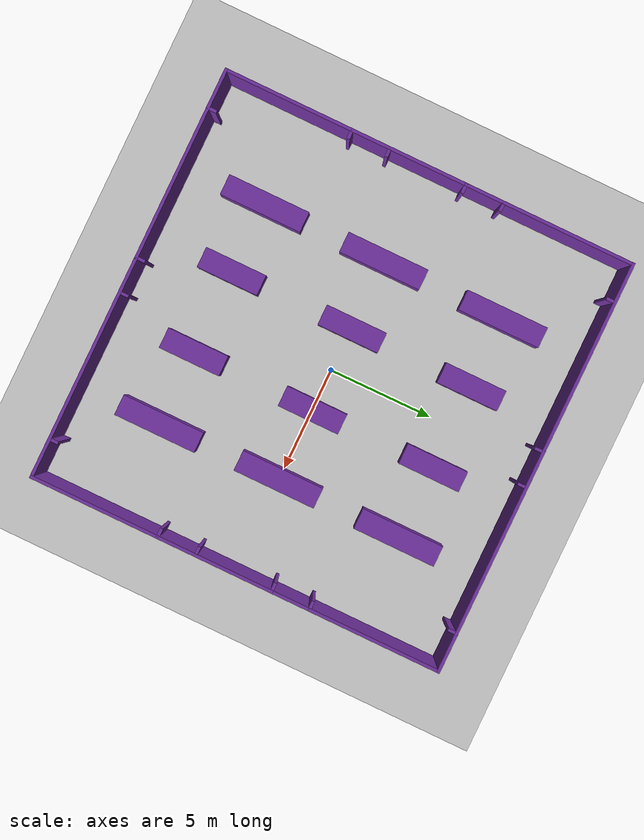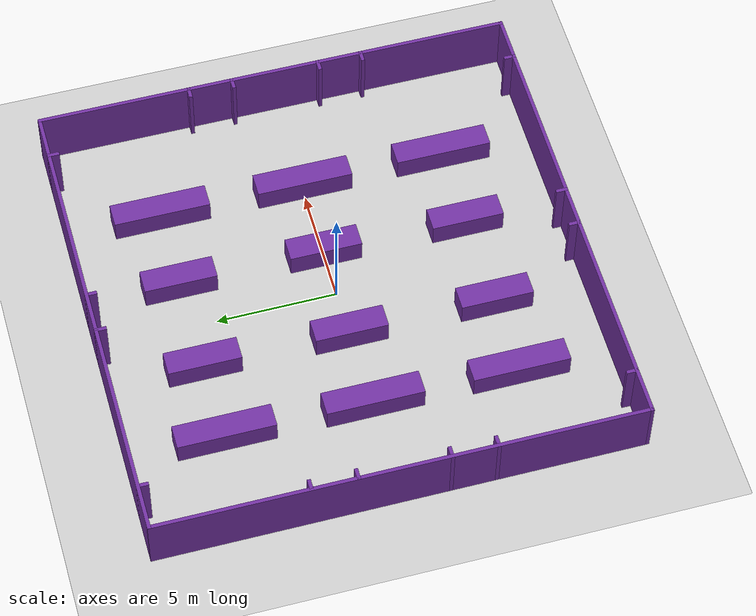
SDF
<sdf version="1.7">
 <world name="default">
  <light name="sun" type="directional">
   <pose>0 0 10 0 -0 0</pose>
   <diffuse>0.8 0.8 0.8 1</diffuse>
   <specular>0.2 0.2 0.2 1</specular>
   <attenuation>
    <range>1000</range>
    <constant>0.9</constant>
    <linear>0.01</linear>
    <quadratic>0.001</quadratic>
   </attenuation>
   <direction>-0.5 0.1 -0.9</direction>
   <spot><inner_angle>0</inner_angle><outer_angle>0</outer_angle><falloff>0</falloff></spot>
  </light>
  <model name="ground_plane">
   <static>1</static>
   <link name="link">
    <collision name="collision">
     <geometry><plane><normal>0 0 1</normal><size>100 100</size></plane></geometry>
     <surface>
      <contact><collide_bitmask>65535</collide_bitmask></contact>
      <friction><ode><mu>100</mu><mu2>50</mu2></ode></friction>
     </surface>
    </collision>
    <visual name="visual">
     <cast_shadows>0</cast_shadows>
     <geometry><plane><normal>0 0 1</normal><size>100 100</size></plane></geometry>
     <material>
      <script><uri>file://media/materials/scripts/gazebo.material</uri><name>Gazebo/Grey</name></script>
     </material>
    </visual>
   </link>
  </model>
  <gravity>0 0 -9.8</gravity>
  <magnetic_field>6e-06 2.3e-05 -4.2e-05</magnetic_field>
  <atmosphere type="adiabatic"/>
  <physics type="ode">
   <max_step_size>0.001</max_step_size>
   <real_time_factor>1</real_time_factor>
   <real_time_update_rate>1000</real_time_update_rate>
  </physics>
  <scene><ambient>0.4 0.4 0.4 1</ambient><background>0.7 0.7 0.7 1</background><shadows>1</shadows></scene>
  <spherical_coordinates>
   <surface_model>EARTH_WGS84</surface_model>
   <latitude_deg>0</latitude_deg>
   <longitude_deg>0</longitude_deg>
   <elevation>0</elevation>
   <heading_deg>0</heading_deg>
  </spherical_coordinates>
  <model name="B_1_4_0">
   <link name="link_0">
    <inertial>
     <mass>40</mass>
     <inertia><ixx>56.6667</ixx><ixy>0</ixy><ixz>0</ixz><iyy>6.66667</iyy><iyz>0</iyz><izz>56.6667</izz></inertia>
    </inertial>
    <visual name="visual">
     <geometry><box><size>1 4 1</size></box></geometry>
     <material>
      <lighting>1</lighting>
      <script><uri>file://media/materials/scripts/gazebo.material</uri><name>Gazebo/Grey</name></script>
      <shader type="pixel"><normal_map>__default__</normal_map></shader>
      <ambient>0.44 0.19 0.63 1</ambient>
      <diffuse>0.7 0.7 0.7 1</diffuse>
      <specular>0.01 0.01 0.01 1</specular>
      <emissive>0 0 0 1</emissive>
     </material>
    </visual>
    <collision name="collision">
     <geometry><box><size>1 4 1</size></box></geometry>
     <surface>
      <friction>
       <ode><mu>1</mu><mu2>1</mu2><fdir1>0 0 0</fdir1><slip1>0</slip1><slip2>0</slip2></ode>
       <torsional>
        <coefficient>1</coefficient>
        <patch_radius>0</patch_radius>
        <surface_radius>0</surface_radius>
        <use_patch_radius>1</use_patch_radius>
        <ode><slip>0</slip></ode>
       </torsional>
      </friction>
      <bounce><restitution_coefficient>0</restitution_coefficient><threshold>1e+06</threshold></bounce>
      <contact>
       <collide_without_contact>0</collide_without_contact>
       <collide_without_contact_bitmask>1</collide_without_contact_bitmask>
       <collide_bitmask>1</collide_bitmask>
       <ode>
        <soft_cfm>0</soft_cfm>
        <soft_erp>0.2</soft_erp>
        <kp>1e+13</kp>
        <kd>1</kd>
        <max_vel>0.01</max_vel>
        <min_depth>0</min_depth>
       </ode>
       <bullet>
        <split_impulse>1</split_impulse>
        <split_impulse_penetration_threshold>-0.01</split_impulse_penetration_threshold>
        <soft_cfm>0</soft_cfm>
        <soft_erp>0.2</soft_erp>
        <kp>1e+13</kp>
        <kd>1</kd>
       </bullet>
      </contact>
     </surface>
    </collision>
   </link>
   <static>0</static>
   <pose>-5.4852 0.015964 0.5 0 -0 0</pose>
  </model>
  <model name="B_1_4">
   <link name="link_0">
    <inertial>
     <mass>40</mass>
     <inertia><ixx>56.6667</ixx><ixy>0</ixy><ixz>0</ixz><iyy>6.66667</iyy><iyz>0</iyz><izz>56.6667</izz></inertia>
    </inertial>
    <visual name="visual">
     <geometry><box><size>1 4 1</size></box></geometry>
     <material>
      <lighting>1</lighting>
      <script><uri>file://media/materials/scripts/gazebo.material</uri><name>Gazebo/Grey</name></script>
      <shader type="pixel"><normal_map>__default__</normal_map></shader>
      <ambient>0.44 0.19 0.63 1</ambient>
      <diffuse>0.7 0.7 0.7 1</diffuse>
      <specular>0.01 0.01 0.01 1</specular>
      <emissive>0 0 0 1</emissive>
     </material>
    </visual>
    <collision name="collision">
     <geometry><box><size>1 4 1</size></box></geometry>
     <surface>
      <friction>
       <ode><mu>1</mu><mu2>1</mu2><fdir1>0 0 0</fdir1><slip1>0</slip1><slip2>0</slip2></ode>
       <torsional>
        <coefficient>1</coefficient>
        <patch_radius>0</patch_radius>
        <surface_radius>0</surface_radius>
        <use_patch_radius>1</use_patch_radius>
        <ode><slip>0</slip></ode>
       </torsional>
      </friction>
      <bounce><restitution_coefficient>0</restitution_coefficient><threshold>1e+06</threshold></bounce>
      <contact>
       <collide_without_contact>0</collide_without_contact>
       <collide_without_contact_bitmask>1</collide_without_contact_bitmask>
       <collide_bitmask>1</collide_bitmask>
       <ode>
        <soft_cfm>0</soft_cfm>
        <soft_erp>0.2</soft_erp>
        <kp>1e+13</kp>
        <kd>1</kd>
        <max_vel>0.01</max_vel>
        <min_depth>0</min_depth>
       </ode>
       <bullet>
        <split_impulse>1</split_impulse>
        <split_impulse_penetration_threshold>-0.01</split_impulse_penetration_threshold>
        <soft_cfm>0</soft_cfm>
        <soft_erp>0.2</soft_erp>
        <kp>1e+13</kp>
        <kd>1</kd>
       </bullet>
      </contact>
     </surface>
    </collision>
   </link>
   <static>0</static>
   <pose>-5.44605 6.01143 0.5 0 -0 0</pose>
  </model>
  <model name="B_1_4_1">
   <link name="link_0">
    <inertial>
     <mass>40</mass>
     <inertia><ixx>56.6667</ixx><ixy>0</ixy><ixz>0</ixz><iyy>6.66667</iyy><iyz>0</iyz><izz>56.6667</izz></inertia>
    </inertial>
    <visual name="visual">
     <geometry><box><size>1 4 1</size></box></geometry>
     <material>
      <lighting>1</lighting>
      <script><uri>file://media/materials/scripts/gazebo.material</uri><name>Gazebo/Grey</name></script>
      <shader type="pixel"><normal_map>__default__</normal_map></shader>
      <ambient>0.44 0.19 0.63 1</ambient>
      <diffuse>0.7 0.7 0.7 1</diffuse>
      <specular>0.01 0.01 0.01 1</specular>
      <emissive>0 0 0 1</emissive>
     </material>
    </visual>
    <collision name="collision">
     <geometry><box><size>1 4 1</size></box></geometry>
     <surface>
      <friction>
       <ode><mu>1</mu><mu2>1</mu2><fdir1>0 0 0</fdir1><slip1>0</slip1><slip2>0</slip2></ode>
       <torsional>
        <coefficient>1</coefficient>
        <patch_radius>0</patch_radius>
        <surface_radius>0</surface_radius>
        <use_patch_radius>1</use_patch_radius>
        <ode><slip>0</slip></ode>
       </torsional>
      </friction>
      <bounce><restitution_coefficient>0</restitution_coefficient><threshold>1e+06</threshold></bounce>
      <contact>
       <collide_without_contact>0</collide_without_contact>
       <collide_without_contact_bitmask>1</collide_without_contact_bitmask>
       <collide_bitmask>1</collide_bitmask>
       <ode>
        <soft_cfm>0</soft_cfm>
        <soft_erp>0.2</soft_erp>
        <kp>1e+13</kp>
        <kd>1</kd>
        <max_vel>0.01</max_vel>
        <min_depth>0</min_depth>
       </ode>
       <bullet>
        <split_impulse>1</split_impulse>
        <split_impulse_penetration_threshold>-0.01</split_impulse_penetration_threshold>
        <soft_cfm>0</soft_cfm>
        <soft_erp>0.2</soft_erp>
        <kp>1e+13</kp>
        <kd>1</kd>
       </bullet>
      </contact>
     </surface>
    </collision>
   </link>
   <static>0</static>
   <pose>-5.50992 -5.97184 0.5 0 -0 0</pose>
  </model>
  <model name="B_1_4_2">
   <link name="link_0">
    <inertial>
     <mass>40</mass>
     <inertia><ixx>56.6667</ixx><ixy>0</ixy><ixz>0</ixz><iyy>6.66667</iyy><iyz>0</iyz><izz>56.6667</izz></inertia>
    </inertial>
    <visual name="visual">
     <geometry><box><size>1 4 1</size></box></geometry>
     <material>
      <lighting>1</lighting>
      <script><uri>file://media/materials/scripts/gazebo.material</uri><name>Gazebo/Grey</name></script>
      <shader type="pixel"><normal_map>__default__</normal_map></shader>
      <ambient>0.44 0.19 0.63 1</ambient>
      <diffuse>0.7 0.7 0.7 1</diffuse>
      <specular>0.01 0.01 0.01 1</specular>
      <emissive>0 0 0 1</emissive>
     </material>
    </visual>
    <collision name="collision">
     <geometry><box><size>1 4 1</size></box></geometry>
     <surface>
      <friction>
       <ode><mu>1</mu><mu2>1</mu2><fdir1>0 0 0</fdir1><slip1>0</slip1><slip2>0</slip2></ode>
       <torsional>
        <coefficient>1</coefficient>
        <patch_radius>0</patch_radius>
        <surface_radius>0</surface_radius>
        <use_patch_radius>1</use_patch_radius>
        <ode><slip>0</slip></ode>
       </torsional>
      </friction>
      <bounce><restitution_coefficient>0</restitution_coefficient><threshold>1e+06</threshold></bounce>
      <contact>
       <collide_without_contact>0</collide_without_contact>
       <collide_without_contact_bitmask>1</collide_without_contact_bitmask>
       <collide_bitmask>1</collide_bitmask>
       <ode>
        <soft_cfm>0</soft_cfm>
        <soft_erp>0.2</soft_erp>
        <kp>1e+13</kp>
        <kd>1</kd>
        <max_vel>0.01</max_vel>
        <min_depth>0</min_depth>
       </ode>
       <bullet>
        <split_impulse>1</split_impulse>
        <split_impulse_penetration_threshold>-0.01</split_impulse_penetration_threshold>
        <soft_cfm>0</soft_cfm>
        <soft_erp>0.2</soft_erp>
        <kp>1e+13</kp>
        <kd>1</kd>
       </bullet>
      </contact>
     </surface>
    </collision>
   </link>
   <static>0</static>
   <pose>5.52612 6.00951 0.5 0 -0 0</pose>
  </model>
  <model name="B_1_4_3">
   <link name="link_0">
    <inertial>
     <mass>40</mass>
     <inertia><ixx>56.6667</ixx><ixy>0</ixy><ixz>0</ixz><iyy>6.66667</iyy><iyz>0</iyz><izz>56.6667</izz></inertia>
    </inertial>
    <visual name="visual">
     <geometry><box><size>1 4 1</size></box></geometry>
     <material>
      <lighting>1</lighting>
      <script><uri>file://media/materials/scripts/gazebo.material</uri><name>Gazebo/Grey</name></script>
      <shader type="pixel"><normal_map>__default__</normal_map></shader>
      <ambient>0.44 0.19 0.63 1</ambient>
      <diffuse>0.7 0.7 0.7 1</diffuse>
      <specular>0.01 0.01 0.01 1</specular>
      <emissive>0 0 0 1</emissive>
     </material>
    </visual>
    <collision name="collision">
     <geometry><box><size>1 4 1</size></box></geometry>
     <surface>
      <friction>
       <ode><mu>1</mu><mu2>1</mu2><fdir1>0 0 0</fdir1><slip1>0</slip1><slip2>0</slip2></ode>
       <torsional>
        <coefficient>1</coefficient>
        <patch_radius>0</patch_radius>
        <surface_radius>0</surface_radius>
        <use_patch_radius>1</use_patch_radius>
        <ode><slip>0</slip></ode>
       </torsional>
      </friction>
      <bounce><restitution_coefficient>0</restitution_coefficient><threshold>1e+06</threshold></bounce>
      <contact>
       <collide_without_contact>0</collide_without_contact>
       <collide_without_contact_bitmask>1</collide_without_contact_bitmask>
       <collide_bitmask>1</collide_bitmask>
       <ode>
        <soft_cfm>0</soft_cfm>
        <soft_erp>0.2</soft_erp>
        <kp>1e+13</kp>
        <kd>1</kd>
        <max_vel>0.01</max_vel>
        <min_depth>0</min_depth>
       </ode>
       <bullet>
        <split_impulse>1</split_impulse>
        <split_impulse_penetration_threshold>-0.01</split_impulse_penetration_threshold>
        <soft_cfm>0</soft_cfm>
        <soft_erp>0.2</soft_erp>
        <kp>1e+13</kp>
        <kd>1</kd>
       </bullet>
      </contact>
     </surface>
    </collision>
   </link>
   <static>0</static>
   <pose>5.49347 -0.022705 0.5 0 -0 0</pose>
  </model>
  <model name="B_1_4_4">
   <link name="link_0">
    <inertial>
     <mass>40</mass>
     <inertia><ixx>56.6667</ixx><ixy>0</ixy><ixz>0</ixz><iyy>6.66667</iyy><iyz>0</iyz><izz>56.6667</izz></inertia>
    </inertial>
    <visual name="visual">
     <geometry><box><size>1 4 1</size></box></geometry>
     <material>
      <lighting>1</lighting>
      <script><uri>file://media/materials/scripts/gazebo.material</uri><name>Gazebo/Grey</name></script>
      <shader type="pixel"><normal_map>__default__</normal_map></shader>
      <ambient>0.44 0.19 0.63 1</ambient>
      <diffuse>0.7 0.7 0.7 1</diffuse>
      <specular>0.01 0.01 0.01 1</specular>
      <emissive>0 0 0 1</emissive>
     </material>
    </visual>
    <collision name="collision">
     <geometry><box><size>1 4 1</size></box></geometry>
     <surface>
      <friction>
       <ode><mu>1</mu><mu2>1</mu2><fdir1>0 0 0</fdir1><slip1>0</slip1><slip2>0</slip2></ode>
       <torsional>
        <coefficient>1</coefficient>
        <patch_radius>0</patch_radius>
        <surface_radius>0</surface_radius>
        <use_patch_radius>1</use_patch_radius>
        <ode><slip>0</slip></ode>
       </torsional>
      </friction>
      <bounce><restitution_coefficient>0</restitution_coefficient><threshold>1e+06</threshold></bounce>
      <contact>
       <collide_without_contact>0</collide_without_contact>
       <collide_without_contact_bitmask>1</collide_without_contact_bitmask>
       <collide_bitmask>1</collide_bitmask>
       <ode>
        <soft_cfm>0</soft_cfm>
        <soft_erp>0.2</soft_erp>
        <kp>1e+13</kp>
        <kd>1</kd>
        <max_vel>0.01</max_vel>
        <min_depth>0</min_depth>
       </ode>
       <bullet>
        <split_impulse>1</split_impulse>
        <split_impulse_penetration_threshold>-0.01</split_impulse_penetration_threshold>
        <soft_cfm>0</soft_cfm>
        <soft_erp>0.2</soft_erp>
        <kp>1e+13</kp>
        <kd>1</kd>
       </bullet>
      </contact>
     </surface>
    </collision>
   </link>
   <static>0</static>
   <pose>5.54818 -5.98559 0.5 0 -0 0</pose>
  </model>
  <model name="B_1_3">
   <link name="link_1">
    <inertial>
     <mass>30</mass>
     <inertia><ixx>25</ixx><ixy>0</ixy><ixz>0</ixz><iyy>5</iyy><iyz>0</iyz><izz>25</izz></inertia>
    </inertial>
    <visual name="visual">
     <geometry><box><size>1 3 1</size></box></geometry>
     <material>
      <lighting>1</lighting>
      <script><uri>file://media/materials/scripts/gazebo.material</uri><name>Gazebo/Grey</name></script>
      <shader type="pixel"><normal_map>__default__</normal_map></shader>
      <ambient>0.44 0.19 0.63 1</ambient>
      <diffuse>0.7 0.7 0.7 1</diffuse>
      <specular>0.01 0.01 0.01 1</specular>
      <emissive>0 0 0 1</emissive>
     </material>
    </visual>
    <collision name="collision">
     <geometry><box><size>1 3 1</size></box></geometry>
     <surface>
      <friction>
       <ode><mu>1</mu><mu2>1</mu2><fdir1>0 0 0</fdir1><slip1>0</slip1><slip2>0</slip2></ode>
       <torsional>
        <coefficient>1</coefficient>
        <patch_radius>0</patch_radius>
        <surface_radius>0</surface_radius>
        <use_patch_radius>1</use_patch_radius>
        <ode><slip>0</slip></ode>
       </torsional>
      </friction>
      <bounce><restitution_coefficient>0</restitution_coefficient><threshold>1e+06</threshold></bounce>
      <contact>
       <collide_without_contact>0</collide_without_contact>
       <collide_without_contact_bitmask>1</collide_without_contact_bitmask>
       <collide_bitmask>1</collide_bitmask>
       <ode>
        <soft_cfm>0</soft_cfm>
        <soft_erp>0.2</soft_erp>
        <kp>1e+13</kp>
        <kd>1</kd>
        <max_vel>0.01</max_vel>
        <min_depth>0</min_depth>
       </ode>
       <bullet>
        <split_impulse>1</split_impulse>
        <split_impulse_penetration_threshold>-0.01</split_impulse_penetration_threshold>
        <soft_cfm>0</soft_cfm>
        <soft_erp>0.2</soft_erp>
        <kp>1e+13</kp>
        <kd>1</kd>
       </bullet>
      </contact>
     </surface>
    </collision>
   </link>
   <static>0</static>
   <pose>1.99632 6.07045 0.5 0 -0 0</pose>
  </model>
  <model name="B_1_3_clone">
   <link name="link_1">
    <inertial>
     <mass>30</mass>
     <inertia><ixx>25</ixx><ixy>0</ixy><ixz>0</ixz><iyy>5</iyy><iyz>0</iyz><izz>25</izz></inertia>
    </inertial>
    <visual name="visual">
     <geometry><box><size>1 3 1</size></box></geometry>
     <material>
      <lighting>1</lighting>
      <script><uri>file://media/materials/scripts/gazebo.material</uri><name>Gazebo/Grey</name></script>
      <shader type="pixel"><normal_map>__default__</normal_map></shader>
      <ambient>0.44 0.19 0.63 1</ambient>
      <diffuse>0.7 0.7 0.7 1</diffuse>
      <specular>0.01 0.01 0.01 1</specular>
      <emissive>0 0 0 1</emissive>
     </material>
    </visual>
    <collision name="collision">
     <geometry><box><size>1 3 1</size></box></geometry>
     <surface>
      <friction>
       <ode><mu>1</mu><mu2>1</mu2><fdir1>0 0 0</fdir1><slip1>0</slip1><slip2>0</slip2></ode>
       <torsional>
        <coefficient>1</coefficient>
        <patch_radius>0</patch_radius>
        <surface_radius>0</surface_radius>
        <use_patch_radius>1</use_patch_radius>
        <ode><slip>0</slip></ode>
       </torsional>
      </friction>
      <bounce><restitution_coefficient>0</restitution_coefficient><threshold>1e+06</threshold></bounce>
      <contact>
       <collide_without_contact>0</collide_without_contact>
       <collide_without_contact_bitmask>1</collide_without_contact_bitmask>
       <collide_bitmask>1</collide_bitmask>
       <ode>
        <soft_cfm>0</soft_cfm>
        <soft_erp>0.2</soft_erp>
        <kp>1e+13</kp>
        <kd>1</kd>
        <max_vel>0.01</max_vel>
        <min_depth>0</min_depth>
       </ode>
       <bullet>
        <split_impulse>1</split_impulse>
        <split_impulse_penetration_threshold>-0.01</split_impulse_penetration_threshold>
        <soft_cfm>0</soft_cfm>
        <soft_erp>0.2</soft_erp>
        <kp>1e+13</kp>
        <kd>1</kd>
       </bullet>
      </contact>
     </surface>
    </collision>
   </link>
   <static>0</static>
   <pose>-2.0578 6.06122 0.5 0 -0 0</pose>
  </model>
  <model name="B_1_3_clone_clone">
   <link name="link_1">
    <inertial>
     <mass>30</mass>
     <inertia><ixx>25</ixx><ixy>0</ixy><ixz>0</ixz><iyy>5</iyy><iyz>0</iyz><izz>25</izz></inertia>
    </inertial>
    <visual name="visual">
     <geometry><box><size>1 3 1</size></box></geometry>
     <material>
      <lighting>1</lighting>
      <script><uri>file://media/materials/scripts/gazebo.material</uri><name>Gazebo/Grey</name></script>
      <shader type="pixel"><normal_map>__default__</normal_map></shader>
      <ambient>0.44 0.19 0.63 1</ambient>
      <diffuse>0.7 0.7 0.7 1</diffuse>
      <specular>0.01 0.01 0.01 1</specular>
      <emissive>0 0 0 1</emissive>
     </material>
    </visual>
    <collision name="collision">
     <geometry><box><size>1 3 1</size></box></geometry>
     <surface>
      <friction>
       <ode><mu>1</mu><mu2>1</mu2><fdir1>0 0 0</fdir1><slip1>0</slip1><slip2>0</slip2></ode>
       <torsional>
        <coefficient>1</coefficient>
        <patch_radius>0</patch_radius>
        <surface_radius>0</surface_radius>
        <use_patch_radius>1</use_patch_radius>
        <ode><slip>0</slip></ode>
       </torsional>
      </friction>
      <bounce><restitution_coefficient>0</restitution_coefficient><threshold>1e+06</threshold></bounce>
      <contact>
       <collide_without_contact>0</collide_without_contact>
       <collide_without_contact_bitmask>1</collide_without_contact_bitmask>
       <collide_bitmask>1</collide_bitmask>
       <ode>
        <soft_cfm>0</soft_cfm>
        <soft_erp>0.2</soft_erp>
        <kp>1e+13</kp>
        <kd>1</kd>
        <max_vel>0.01</max_vel>
        <min_depth>0</min_depth>
       </ode>
       <bullet>
        <split_impulse>1</split_impulse>
        <split_impulse_penetration_threshold>-0.01</split_impulse_penetration_threshold>
        <soft_cfm>0</soft_cfm>
        <soft_erp>0.2</soft_erp>
        <kp>1e+13</kp>
        <kd>1</kd>
       </bullet>
      </contact>
     </surface>
    </collision>
   </link>
   <static>0</static>
   <pose>-2.09356 0.051228 0.5 0 -0 0</pose>
  </model>
  <model name="B_1_3_clone_clone_clone">
   <link name="link_1">
    <inertial>
     <mass>30</mass>
     <inertia><ixx>25</ixx><ixy>0</ixy><ixz>0</ixz><iyy>5</iyy><iyz>0</iyz><izz>25</izz></inertia>
    </inertial>
    <visual name="visual">
     <geometry><box><size>1 3 1</size></box></geometry>
     <material>
      <lighting>1</lighting>
      <script><uri>file://media/materials/scripts/gazebo.material</uri><name>Gazebo/Grey</name></script>
      <shader type="pixel"><normal_map>__default__</normal_map></shader>
      <ambient>0.44 0.19 0.63 1</ambient>
      <diffuse>0.7 0.7 0.7 1</diffuse>
      <specular>0.01 0.01 0.01 1</specular>
      <emissive>0 0 0 1</emissive>
     </material>
    </visual>
    <collision name="collision">
     <geometry><box><size>1 3 1</size></box></geometry>
     <surface>
      <friction>
       <ode><mu>1</mu><mu2>1</mu2><fdir1>0 0 0</fdir1><slip1>0</slip1><slip2>0</slip2></ode>
       <torsional>
        <coefficient>1</coefficient>
        <patch_radius>0</patch_radius>
        <surface_radius>0</surface_radius>
        <use_patch_radius>1</use_patch_radius>
        <ode><slip>0</slip></ode>
       </torsional>
      </friction>
      <bounce><restitution_coefficient>0</restitution_coefficient><threshold>1e+06</threshold></bounce>
      <contact>
       <collide_without_contact>0</collide_without_contact>
       <collide_without_contact_bitmask>1</collide_without_contact_bitmask>
       <collide_bitmask>1</collide_bitmask>
       <ode>
        <soft_cfm>0</soft_cfm>
        <soft_erp>0.2</soft_erp>
        <kp>1e+13</kp>
        <kd>1</kd>
        <max_vel>0.01</max_vel>
        <min_depth>0</min_depth>
       </ode>
       <bullet>
        <split_impulse>1</split_impulse>
        <split_impulse_penetration_threshold>-0.01</split_impulse_penetration_threshold>
        <soft_cfm>0</soft_cfm>
        <soft_erp>0.2</soft_erp>
        <kp>1e+13</kp>
        <kd>1</kd>
       </bullet>
      </contact>
     </surface>
    </collision>
   </link>
   <static>0</static>
   <pose>1.99973 0.020044 0.5 0 -0 0</pose>
  </model>
  <model name="B_1_3_clone_clone_clone_clone">
   <link name="link_1">
    <inertial>
     <mass>30</mass>
     <inertia><ixx>25</ixx><ixy>0</ixy><ixz>0</ixz><iyy>5</iyy><iyz>0</iyz><izz>25</izz></inertia>
    </inertial>
    <visual name="visual">
     <geometry><box><size>1 3 1</size></box></geometry>
     <material>
      <lighting>1</lighting>
      <script><uri>file://media/materials/scripts/gazebo.material</uri><name>Gazebo/Grey</name></script>
      <shader type="pixel"><normal_map>__default__</normal_map></shader>
      <ambient>0.44 0.19 0.63 1</ambient>
      <diffuse>0.7 0.7 0.7 1</diffuse>
      <specular>0.01 0.01 0.01 1</specular>
      <emissive>0 0 0 1</emissive>
     </material>
    </visual>
    <collision name="collision">
     <geometry><box><size>1 3 1</size></box></geometry>
     <surface>
      <friction>
       <ode><mu>1</mu><mu2>1</mu2><fdir1>0 0 0</fdir1><slip1>0</slip1><slip2>0</slip2></ode>
       <torsional>
        <coefficient>1</coefficient>
        <patch_radius>0</patch_radius>
        <surface_radius>0</surface_radius>
        <use_patch_radius>1</use_patch_radius>
        <ode><slip>0</slip></ode>
       </torsional>
      </friction>
      <bounce><restitution_coefficient>0</restitution_coefficient><threshold>1e+06</threshold></bounce>
      <contact>
       <collide_without_contact>0</collide_without_contact>
       <collide_without_contact_bitmask>1</collide_without_contact_bitmask>
       <collide_bitmask>1</collide_bitmask>
       <ode>
        <soft_cfm>0</soft_cfm>
        <soft_erp>0.2</soft_erp>
        <kp>1e+13</kp>
        <kd>1</kd>
        <max_vel>0.01</max_vel>
        <min_depth>0</min_depth>
       </ode>
       <bullet>
        <split_impulse>1</split_impulse>
        <split_impulse_penetration_threshold>-0.01</split_impulse_penetration_threshold>
        <soft_cfm>0</soft_cfm>
        <soft_erp>0.2</soft_erp>
        <kp>1e+13</kp>
        <kd>1</kd>
       </bullet>
      </contact>
     </surface>
    </collision>
   </link>
   <static>0</static>
   <pose>1.94317 -5.96793 0.5 0 -0 0</pose>
  </model>
  <model name="B_1_3_clone_clone_clone_0">
   <link name="link_1">
    <inertial>
     <mass>30</mass>
     <inertia><ixx>25</ixx><ixy>0</ixy><ixz>0</ixz><iyy>5</iyy><iyz>0</iyz><izz>25</izz></inertia>
    </inertial>
    <visual name="visual">
     <geometry><box><size>1 3 1</size></box></geometry>
     <material>
      <lighting>1</lighting>
      <script><uri>file://media/materials/scripts/gazebo.material</uri><name>Gazebo/Grey</name></script>
      <shader type="pixel"><normal_map>__default__</normal_map></shader>
      <ambient>0.44 0.19 0.63 1</ambient>
      <diffuse>0.7 0.7 0.7 1</diffuse>
      <specular>0.01 0.01 0.01 1</specular>
      <emissive>0 0 0 1</emissive>
     </material>
    </visual>
    <collision name="collision">
     <geometry><box><size>1 3 1</size></box></geometry>
     <surface>
      <friction>
       <ode><mu>1</mu><mu2>1</mu2><fdir1>0 0 0</fdir1><slip1>0</slip1><slip2>0</slip2></ode>
       <torsional>
        <coefficient>1</coefficient>
        <patch_radius>0</patch_radius>
        <surface_radius>0</surface_radius>
        <use_patch_radius>1</use_patch_radius>
        <ode><slip>0</slip></ode>
       </torsional>
      </friction>
      <bounce><restitution_coefficient>0</restitution_coefficient><threshold>1e+06</threshold></bounce>
      <contact>
       <collide_without_contact>0</collide_without_contact>
       <collide_without_contact_bitmask>1</collide_without_contact_bitmask>
       <collide_bitmask>1</collide_bitmask>
       <ode>
        <soft_cfm>0</soft_cfm>
        <soft_erp>0.2</soft_erp>
        <kp>1e+13</kp>
        <kd>1</kd>
        <max_vel>0.01</max_vel>
        <min_depth>0</min_depth>
       </ode>
       <bullet>
        <split_impulse>1</split_impulse>
        <split_impulse_penetration_threshold>-0.01</split_impulse_penetration_threshold>
        <soft_cfm>0</soft_cfm>
        <soft_erp>0.2</soft_erp>
        <kp>1e+13</kp>
        <kd>1</kd>
       </bullet>
      </contact>
     </surface>
    </collision>
   </link>
   <static>0</static>
   <pose>-2.08937 -5.9974 0.5 0 -0 0</pose>
  </model>
  <model name="shelter_20_20">
   <pose>0.003122 0.054993 0 0 -0 0</pose>
   <link name="Wall_0">
    <collision name="Wall_0_Collision">
     <geometry><box><size>20 0.15 2.5</size></box></geometry>
     <pose>0 0 1.25 0 -0 0</pose>
    </collision>
    <visual name="Wall_0_Visual">
     <pose>0 0 1.25 0 -0 0</pose>
     <geometry><box><size>20 0.15 2.5</size></box></geometry>
     <material>
      <script><uri>file://media/materials/scripts/gazebo.material</uri><name>Gazebo/Grey</name></script>
      <ambient>0.439216 0.188235 0.627451 1</ambient>
     </material>
     <meta><layer>0</layer></meta>
    </visual>
    <pose>-0 9.925 0 0 -0 0</pose>
   </link>
   <link name="Wall_1">
    <collision name="Wall_1_Collision">
     <geometry><box><size>20 0.15 2.5</size></box></geometry>
     <pose>0 0 1.25 0 -0 0</pose>
    </collision>
    <visual name="Wall_1_Visual">
     <pose>0 0 1.25 0 -0 0</pose>
     <geometry><box><size>20 0.15 2.5</size></box></geometry>
     <material>
      <script><uri>file://media/materials/scripts/gazebo.material</uri><name>Gazebo/Grey</name></script>
      <ambient>0.439216 0.188235 0.627451 1</ambient>
     </material>
     <meta><layer>0</layer></meta>
    </visual>
    <pose>9.925 0 0 0 -0 -1.5708</pose>
   </link>
   <link name="Wall_2">
    <collision name="Wall_2_Collision">
     <geometry><box><size>20 0.15 2.5</size></box></geometry>
     <pose>0 0 1.25 0 -0 0</pose>
    </collision>
    <visual name="Wall_2_Visual">
     <pose>0 0 1.25 0 -0 0</pose>
     <geometry><box><size>20 0.15 2.5</size></box></geometry>
     <material>
      <script><uri>file://media/materials/scripts/gazebo.material</uri><name>Gazebo/Grey</name></script>
      <ambient>0.439216 0.188235 0.627451 1</ambient>
     </material>
     <meta><layer>0</layer></meta>
    </visual>
    <pose>-0 -9.925 0 0 -0 3.14159</pose>
   </link>
   <link name="Wall_27">
    <collision name="Wall_27_Collision">
     <geometry><box><size>0.5 0.15 2.5</size></box></geometry>
     <pose>0 0 1.25 0 -0 0</pose>
    </collision>
    <visual name="Wall_27_Visual">
     <pose>0 0 1.25 0 -0 0</pose>
     <geometry><box><size>0.5 0.15 2.5</size></box></geometry>
     <material>
      <script><uri>file://media/materials/scripts/gazebo.material</uri><name>Gazebo/Grey</name></script>
      <ambient>0.439216 0.188235 0.627451 1</ambient>
     </material>
     <meta><layer>0</layer></meta>
    </visual>
    <pose>8.075 -9.75 0 0 -0 1.5708</pose>
   </link>
   <link name="Wall_3">
    <collision name="Wall_3_Collision">
     <geometry><box><size>20 0.15 2.5</size></box></geometry>
     <pose>0 0 1.25 0 -0 0</pose>
    </collision>
    <visual name="Wall_3_Visual">
     <pose>0 0 1.25 0 -0 0</pose>
     <geometry><box><size>20 0.15 2.5</size></box></geometry>
     <material>
      <script><uri>file://media/materials/scripts/gazebo.material</uri><name>Gazebo/Grey</name></script>
      <ambient>0.439216 0.188235 0.627451 1</ambient>
     </material>
     <meta><layer>0</layer></meta>
    </visual>
    <pose>-9.925 0 0 0 -0 1.5708</pose>
   </link>
   <link name="Wall_30">
    <collision name="Wall_30_Collision">
     <geometry><box><size>0.5 0.15 2.5</size></box></geometry>
     <pose>0 0 1.25 0 -0 0</pose>
    </collision>
    <visual name="Wall_30_Visual">
     <pose>0 0 1.25 0 -0 0</pose>
     <geometry><box><size>0.5 0.15 2.5</size></box></geometry>
     <material>
      <script><uri>file://media/materials/scripts/gazebo.material</uri><name>Gazebo/Grey</name></script>
      <ambient>0.439216 0.188235 0.627451 1</ambient>
     </material>
     <meta><layer>0</layer></meta>
    </visual>
    <pose>-8.075 -9.75 0 0 -0 1.5708</pose>
   </link>
   <link name="Wall_33">
    <collision name="Wall_33_Collision">
     <geometry><box><size>0.5 0.15 2.5</size></box></geometry>
     <pose>0 0 1.25 0 -0 0</pose>
    </collision>
    <visual name="Wall_33_Visual">
     <pose>0 0 1.25 0 -0 0</pose>
     <geometry><box><size>0.5 0.15 2.5</size></box></geometry>
     <material>
      <script><uri>file://media/materials/scripts/gazebo.material</uri><name>Gazebo/Grey</name></script>
      <ambient>0.439216 0.188235 0.627451 1</ambient>
     </material>
     <meta><layer>0</layer></meta>
    </visual>
    <pose>-0.775 -9.75 0 0 -0 1.5708</pose>
   </link>
   <link name="Wall_36">
    <collision name="Wall_36_Collision">
     <geometry><box><size>0.5 0.15 2.5</size></box></geometry>
     <pose>0 0 1.25 0 -0 0</pose>
    </collision>
    <visual name="Wall_36_Visual">
     <pose>0 0 1.25 0 -0 0</pose>
     <geometry><box><size>0.5 0.15 2.5</size></box></geometry>
     <material>
      <script><uri>file://media/materials/scripts/gazebo.material</uri><name>Gazebo/Grey</name></script>
      <ambient>0.439216 0.188235 0.627451 1</ambient>
     </material>
     <meta><layer>0</layer></meta>
    </visual>
    <pose>0.925 -9.75 0 0 -0 1.5708</pose>
   </link>
   <link name="Wall_39">
    <collision name="Wall_39_Collision">
     <geometry><box><size>0.5 0.15 2.5</size></box></geometry>
     <pose>0 0 1.25 0 -0 0</pose>
    </collision>
    <visual name="Wall_39_Visual">
     <pose>0 0 1.25 0 -0 0</pose>
     <geometry><box><size>0.5 0.15 2.5</size></box></geometry>
     <material>
      <script><uri>file://media/materials/scripts/gazebo.material</uri><name>Gazebo/Grey</name></script>
      <ambient>0.439216 0.188235 0.627451 1</ambient>
     </material>
     <meta><layer>0</layer></meta>
    </visual>
    <pose>-8.075 9.75 0 0 -0 -1.5708</pose>
   </link>
   <link name="Wall_42">
    <collision name="Wall_42_Collision">
     <geometry><box><size>0.5 0.15 2.5</size></box></geometry>
     <pose>0 0 1.25 0 -0 0</pose>
    </collision>
    <visual name="Wall_42_Visual">
     <pose>0 0 1.25 0 -0 0</pose>
     <geometry><box><size>0.5 0.15 2.5</size></box></geometry>
     <material>
      <script><uri>file://media/materials/scripts/gazebo.material</uri><name>Gazebo/Grey</name></script>
      <ambient>0.439216 0.188235 0.627451 1</ambient>
     </material>
     <meta><layer>0</layer></meta>
    </visual>
    <pose>8.075 9.75 0 0 -0 -1.5708</pose>
   </link>
   <link name="Wall_45">
    <collision name="Wall_45_Collision">
     <geometry><box><size>0.5 0.15 2.5</size></box></geometry>
     <pose>0 0 1.25 0 -0 0</pose>
    </collision>
    <visual name="Wall_45_Visual">
     <pose>0 0 1.25 0 -0 0</pose>
     <geometry><box><size>0.5 0.15 2.5</size></box></geometry>
     <material>
      <script><uri>file://media/materials/scripts/gazebo.material</uri><name>Gazebo/Grey</name></script>
      <ambient>0.439216 0.188235 0.627451 1</ambient>
     </material>
     <meta><layer>0</layer></meta>
    </visual>
    <pose>-0.775 9.75 0 0 -0 -1.5708</pose>
   </link>
   <link name="Wall_51">
    <collision name="Wall_51_Collision">
     <geometry><box><size>0.5 0.15 2.5</size></box></geometry>
     <pose>0 0 1.25 0 -0 0</pose>
    </collision>
    <visual name="Wall_51_Visual">
     <pose>0 0 1.25 0 -0 0</pose>
     <geometry><box><size>0.5 0.15 2.5</size></box></geometry>
     <material>
      <script><uri>file://media/materials/scripts/gazebo.material</uri><name>Gazebo/Grey</name></script>
      <ambient>0.439216 0.188235 0.627451 1</ambient>
     </material>
     <meta><layer>0</layer></meta>
    </visual>
    <pose>0.962943 9.75 0 0 -0 -1.5708</pose>
   </link>
   <link name="Wall_54">
    <collision name="Wall_54_Collision">
     <geometry><box><size>0.5 0.15 2.5</size></box></geometry>
     <pose>0 0 1.25 0 -0 0</pose>
    </collision>
    <visual name="Wall_54_Visual">
     <pose>0 0 1.25 0 -0 0</pose>
     <geometry><box><size>0.5 0.15 2.5</size></box></geometry>
     <material>
      <script><uri>file://media/materials/scripts/gazebo.material</uri><name>Gazebo/Grey</name></script>
      <ambient>0.439216 0.188235 0.627451 1</ambient>
     </material>
     <meta><layer>0</layer></meta>
    </visual>
    <pose>-9.75 1.775 0 0 -0 0</pose>
   </link>
   <link name="Wall_57">
    <collision name="Wall_57_Collision">
     <geometry><box><size>0.5 0.15 2.5</size></box></geometry>
     <pose>0 0 1.25 0 -0 0</pose>
    </collision>
    <visual name="Wall_57_Visual">
     <pose>0 0 1.25 0 -0 0</pose>
     <geometry><box><size>0.5 0.15 2.5</size></box></geometry>
     <material>
      <script><uri>file://media/materials/scripts/gazebo.material</uri><name>Gazebo/Grey</name></script>
      <ambient>0.439216 0.188235 0.627451 1</ambient>
     </material>
     <meta><layer>0</layer></meta>
    </visual>
    <pose>-9.75 3.625 0 0 -0 0</pose>
   </link>
   <link name="Wall_60">
    <collision name="Wall_60_Collision">
     <geometry><box><size>0.5 0.15 2.5</size></box></geometry>
     <pose>0 0 1.25 0 -0 0</pose>
    </collision>
    <visual name="Wall_60_Visual">
     <pose>0 0 1.25 0 -0 0</pose>
     <geometry><box><size>0.5 0.15 2.5</size></box></geometry>
     <material>
      <script><uri>file://media/materials/scripts/gazebo.material</uri><name>Gazebo/Grey</name></script>
      <ambient>0.439216 0.188235 0.627451 1</ambient>
     </material>
     <meta><layer>0</layer></meta>
    </visual>
    <pose>9.75 1.775 0 0 -0 3.14159</pose>
   </link>
   <link name="Wall_63">
    <collision name="Wall_63_Collision">
     <geometry><box><size>0.5 0.15 2.5</size></box></geometry>
     <pose>0 0 1.25 0 -0 0</pose>
    </collision>
    <visual name="Wall_63_Visual">
     <pose>0 0 1.25 0 -0 0</pose>
     <geometry><box><size>0.5 0.15 2.5</size></box></geometry>
     <material>
      <script><uri>file://media/materials/scripts/gazebo.material</uri><name>Gazebo/Grey</name></script>
      <ambient>0.439216 0.188235 0.627451 1</ambient>
     </material>
     <meta><layer>0</layer></meta>
    </visual>
    <pose>9.75 3.625 0 0 -0 3.14159</pose>
   </link>
   <link name="Wall_69">
    <collision name="Wall_69_Collision">
     <geometry><box><size>0.5 0.15 2.5</size></box></geometry>
     <pose>0 0 1.25 0 -0 0</pose>
    </collision>
    <visual name="Wall_69_Visual">
     <pose>0 0 1.25 0 -0 0</pose>
     <geometry><box><size>0.5 0.15 2.5</size></box></geometry>
     <material>
      <script><uri>file://media/materials/scripts/gazebo.material</uri><name>Gazebo/Grey</name></script>
      <ambient>0.439216 0.188235 0.627451 1</ambient>
     </material>
     <meta><layer>0</layer></meta>
    </visual>
    <pose>-9.75 -3.775 0 0 -0 0</pose>
   </link>
   <link name="Wall_83">
    <collision name="Wall_83_Collision">
     <geometry><box><size>0.5 0.15 2.5</size></box></geometry>
     <pose>0 0 1.25 0 -0 0</pose>
    </collision>
    <visual name="Wall_83_Visual">
     <pose>0 0 1.25 0 -0 0</pose>
     <geometry><box><size>0.5 0.15 2.5</size></box></geometry>
     <material>
      <script><uri>file://media/materials/scripts/gazebo.material</uri><name>Gazebo/Grey</name></script>
      <ambient>0.439216 0.188235 0.627451 1</ambient>
     </material>
     <meta><layer>0</layer></meta>
    </visual>
    <pose>-9.75 -1.925 0 0 -0 0</pose>
   </link>
   <link name="Wall_88">
    <collision name="Wall_88_Collision">
     <geometry><box><size>0.5 0.15 2.5</size></box></geometry>
     <pose>0 0 1.25 0 -0 0</pose>
    </collision>
    <visual name="Wall_88_Visual">
     <pose>0 0 1.25 0 -0 0</pose>
     <geometry><box><size>0.5 0.15 2.5</size></box></geometry>
     <material>
      <script><uri>file://media/materials/scripts/gazebo.material</uri><name>Gazebo/Grey</name></script>
      <ambient>0.439216 0.188235 0.627451 1</ambient>
     </material>
     <meta><layer>0</layer></meta>
    </visual>
    <pose>9.75 -1.925 0 0 -0 3.14159</pose>
   </link>
   <link name="Wall_90">
    <collision name="Wall_90_Collision">
     <geometry><box><size>0.5 0.15 2.5</size></box></geometry>
     <pose>0 0 1.25 0 -0 0</pose>
    </collision>
    <visual name="Wall_90_Visual">
     <pose>0 0 1.25 0 -0 0</pose>
     <geometry><box><size>0.5 0.15 2.5</size></box></geometry>
     <material>
      <script><uri>file://media/materials/scripts/gazebo.material</uri><name>Gazebo/Grey</name></script>
      <ambient>0.439216 0.188235 0.627451 1</ambient>
     </material>
     <meta><layer>0</layer></meta>
    </visual>
    <pose>9.75 -3.775 0 0 -0 0</pose>
   </link>
   <static>1</static>
  </model>
  <plugin filename="libcollision_map_creator.so" name="collision_map_creator"/>
 </world>
</sdf>
